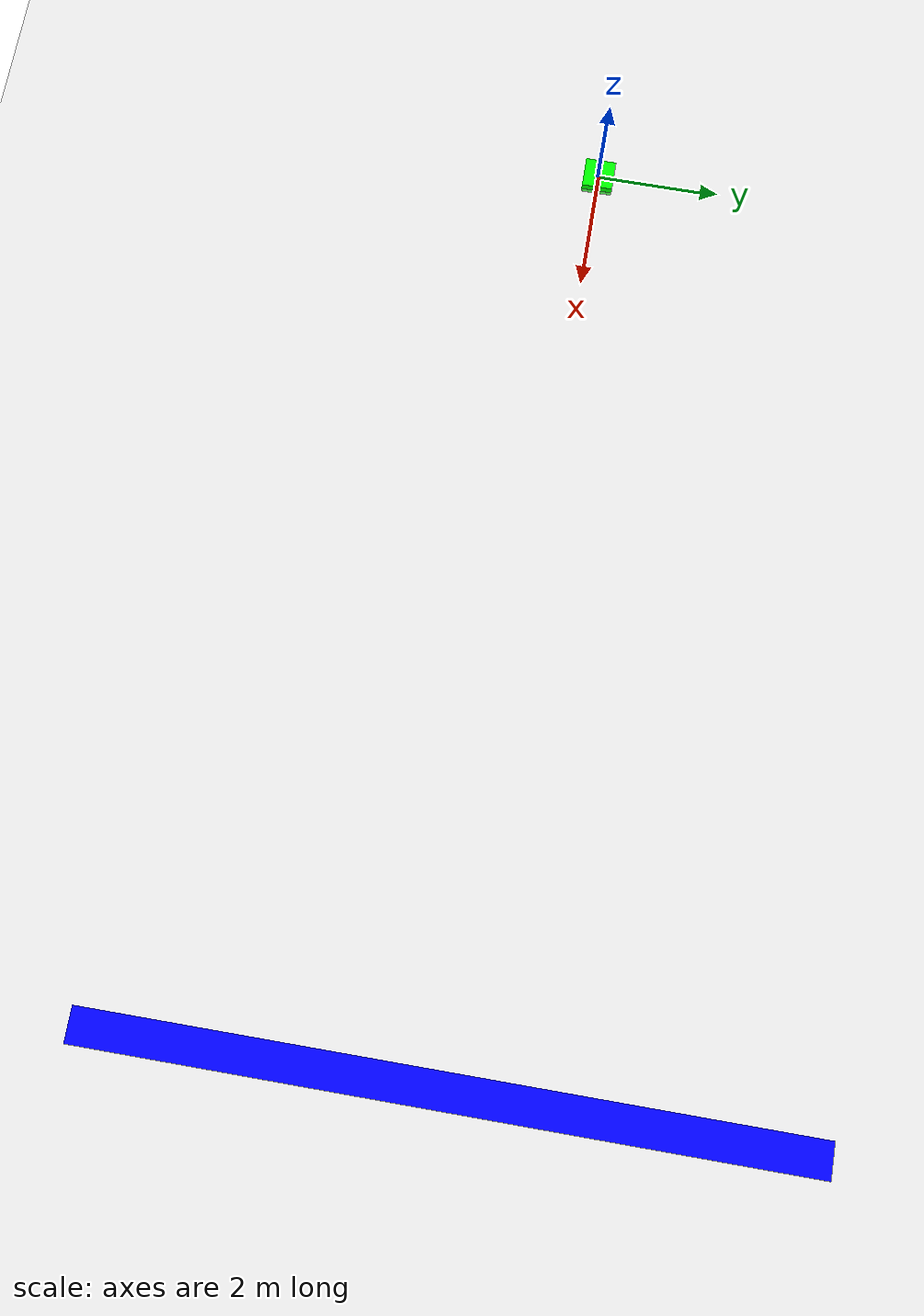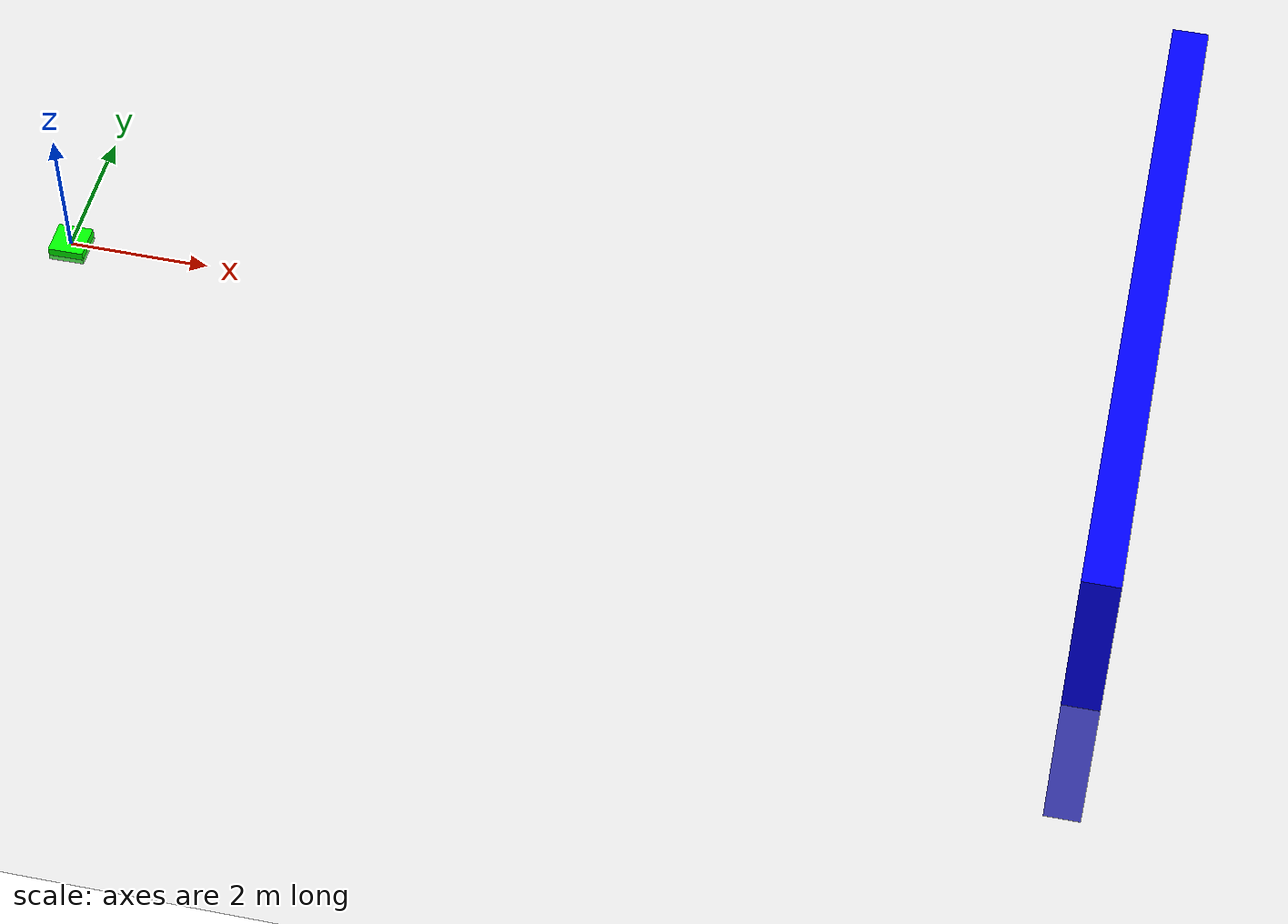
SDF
<?xml version="1.0"?>

<sdf version="1.6">
  <world name="drone_world">
    <physics name="1ms" type="ignored">
      <max_step_size>0.001</max_step_size>
      <real_time_factor>1.0</real_time_factor>
    </physics>
    <plugin
      filename="gz-sim-scene-broadcaster-system"
      name="gz::sim::systems::SceneBroadcaster">
    </plugin>
    <plugin
      filename="gz-sim-user-commands-system"
      name="gz::sim::systems::UserCommands">
    </plugin>
    <plugin
      filename="gz-sim-sensors-system"
      name="gz::sim::systems::Sensors">
      <render_engine>ogre2</render_engine>
    </plugin>
    <plugin filename="gz-sim-imu-system" name="gz::sim::systems::Imu"/>

    <plugin filename="gz-sim-altimeter-system" name="gz::sim::systems::Altimeter"/>

    <light type="directional" name="sun">
      <cast_shadows>true</cast_shadows>
      <pose>0 0 10 0 0 0</pose>
      <diffuse>0.8 0.8 0.8 1</diffuse>
      <specular>0.2 0.2 0.2 1</specular>
      <attenuation>
        <range>1000</range>
        <constant>0.9</constant>
        <linear>0.01</linear>
        <quadratic>0.001</quadratic>
      </attenuation>
      <direction>-0.5 0.1 -0.9</direction>
    </light>

    <model name="ground_plane">
      <static>true</static>
      <link name="link">
        <collision name="collision">
          <geometry>
            <plane>
              <normal>0 0 1</normal>
              <size>100 100</size>
            </plane>
          </geometry>
        </collision>
        <visual name="visual">
          <geometry>
            <plane>
              <normal>0 0 1</normal>
              <size>100 100</size>
            </plane>
          </geometry>
          <material>
            <ambient>0.8 0.8 0.8 1</ambient>
            <diffuse>0.8 0.8 0.8 1</diffuse>
            <specular>0.8 0.8 0.8 1</specular>
          </material>
        </visual>
      </link>
    </model>

    <!-- Spawn drone -->
    <include>
      <uri>file://drone_model.sdf</uri>
      <pose>0 0 0 0 0 0</pose>
    </include>

    <!--wall-->
    <model name='wall'>
      <static>true</static>
      <pose>15 0 0 0 0 0</pose><!--pose
      relative to the world-->
      <link name='box'>
        <pose />
        <inertial> <!--inertial
          properties of the link mass, inertia matix-->
          <mass>1.14395</mass>
          <inertia>
            <ixx>9.532917</ixx>
            <ixy>0</ixy>
            <ixz>0</ixz>
            <iyy>0.023832</iyy>
            <iyz>0</iyz>
            <izz>9.556749</izz>
          </inertia>
        </inertial>
        <visual name='visual'>
          <geometry>
            <box>
              <size>0.5 10.0 5.0</size>
            </box>
          </geometry>
          <!--let's
          add color to our link-->
          <material>
            <ambient>0.0 0.0 1.0 1</ambient>
            <diffuse>0.0 0.0 1.0 1</diffuse>
            <specular>0.0 0.0 1.0 1</specular>
          </material>
        </visual>
        <collision name='collision'> <!--todo:
          describe why we need the collision-->
          <geometry>
            <box>
              <size>0.5 10.0 5.0</size>
            </box>
          </geometry>
        </collision>
        <sensor name='sensor_contact' type='contact'>
          <contact>
            <collision>collision</collision>
          </contact>
        </sensor>
      </link>
    </model>
  </world>
</sdf>

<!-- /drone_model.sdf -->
<sdf version="1.6">
  <model name="drone_model">
    <static>false</static>
    <link name="body">
      <pose>0 0 0 0 0 0</pose>
      <inertial>
        <mass>1.0</mass>
        <inertia>
          <ixx>0.1</ixx>
          <ixy>0.0</ixy>
          <ixz>0.0</ixz>
          <iyy>0.1</iyy>
          <iyz>0.0</iyz>
          <izz>0.1</izz>
        </inertia>
      </inertial>
      <collision name="collision">
        <geometry>
          <box>
            <size>0.5 0.5 0.2</size>
          </box>
        </geometry>
      </collision>
      <visual name="visual">
        <geometry>
          <box>
            <size>0.5 0.5 0.2</size>
          </box>
        </geometry>
        <material>
          <ambient>0.0 1.0 0.0 1</ambient>
          <diffuse>0.0 1.0 0.0 1</diffuse>
          <specular>0.1 0.1 0.1 1</specular>
        </material>
      </visual>
      <!-- IMU Sensor -->
      <sensor name="imu_sensor" type="imu">
        <pose>0 0 0.1 0 0 0</pose>
        <imu>
          <topic>imu</topic>
        </imu>
      </sensor>
      <!-- LiDAR Sensor -->
      <sensor name="lidar_sensor" type="gpu_ray">
        <pose>0 0 0.2 0 0 0</pose>
        <ray>
          <scan>
            <horizontal>
              <samples>360</samples>
              <resolution>1</resolution>
              <min_angle>-3.14159</min_angle>
              <max_angle>3.14159</max_angle>
            </horizontal>
          </scan>
          <range>
            <min>0.1</min>
            <max>10.0</max>
            <resolution>0.01</resolution>
          </range>
        </ray>
      </sensor>
    </link>
  </model>
</sdf>
